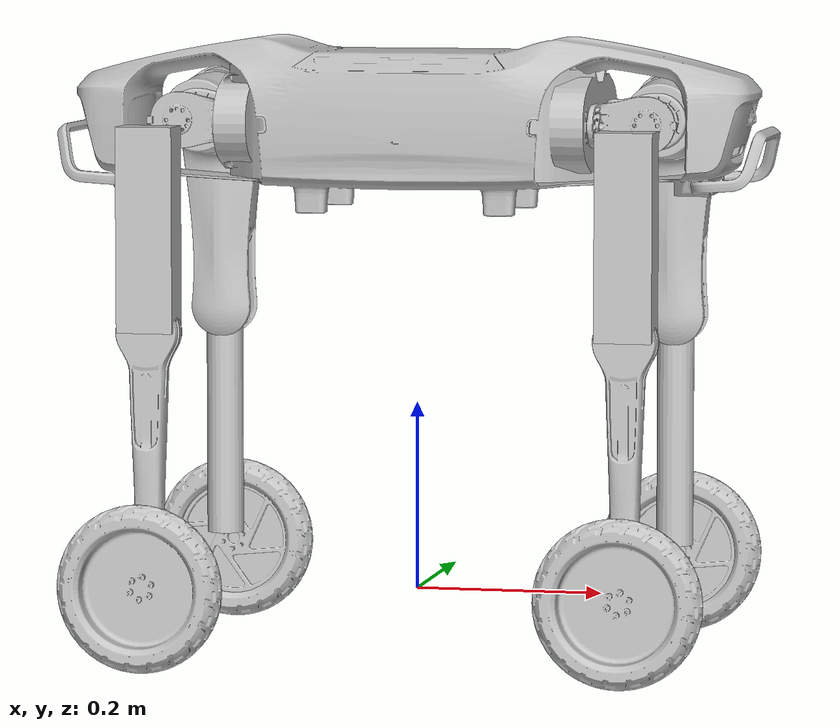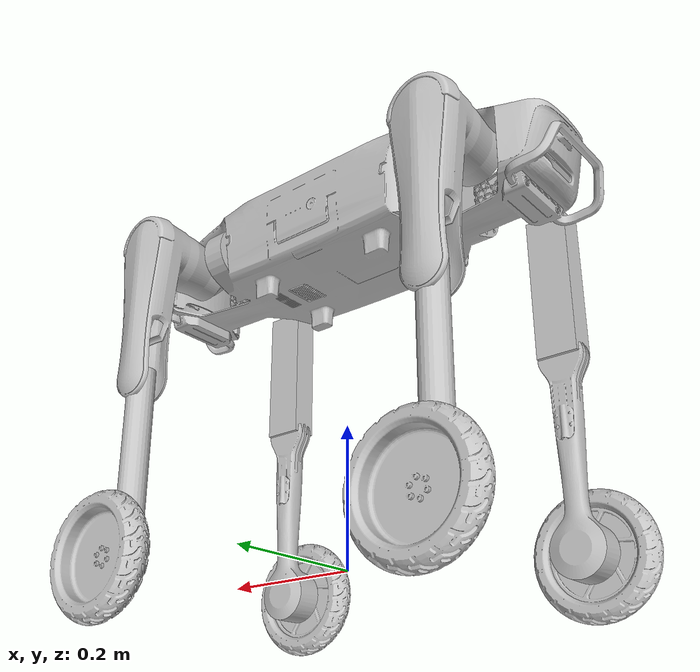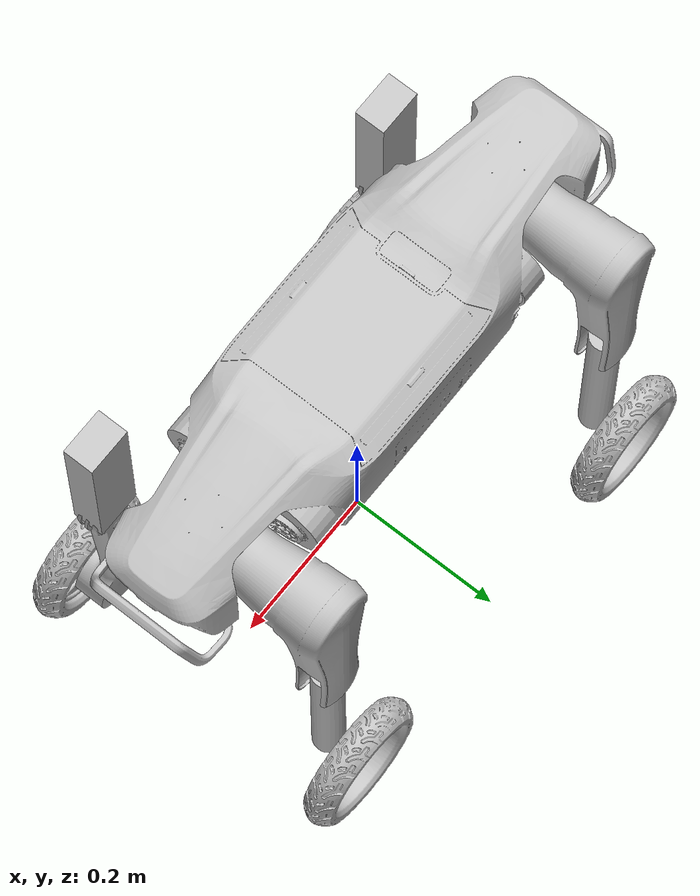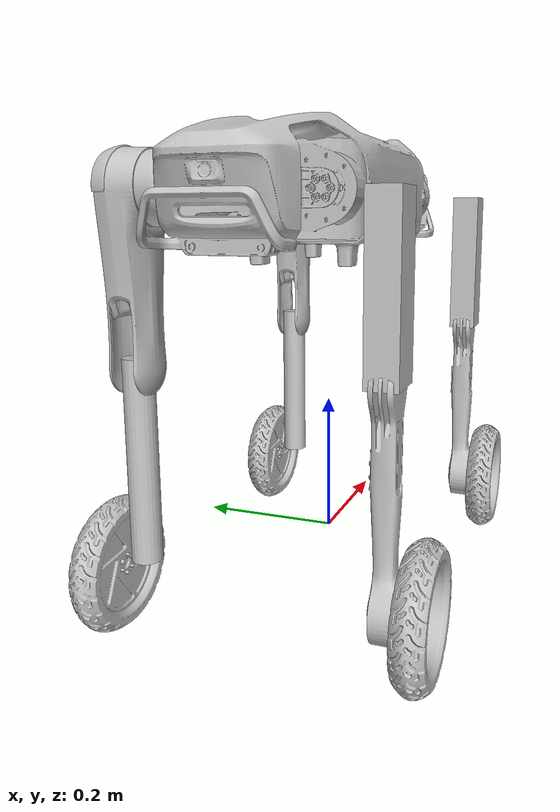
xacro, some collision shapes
<?xml version="1.0" encoding="utf-8"?>
<robot name="dobot_quad_wheel" xmlns:xacro="http://www.ros.org/wiki/xacro">
<mujoco>
        <compiler
        meshdir="../meshes/"
        balanceinertia="true"
        discardvisual="false" />
</mujoco>
<link
  name="world">
</link>
<link name="link_trunk">
  <inertial>
    <origin
      xyz="0.002447 0.00046 0.002851"
      rpy="0 0 0"/>
    <mass
      value="10.249" />
    <inertia
      ixx="45881.970E-06"
      ixy="16.957E-06"
      ixz="177.574E-06"
      iyy="247797.819E-06"
      iyz="41.872E-06"
      izz="268476.829E-06" />
  </inertial>
  <visual>
    <origin
      xyz="0 0 0"
      rpy="0 0 0" />
    <geometry>
      <mesh
        filename="package://dobot_quad_wheel/meshes/trunk.STL" scale="1 1 1"/>
    </geometry>
    <material name="">
      <color rgba="0.752941176470588 0.752941176470588 0.752941176470588 1" />
    </material>
  </visual>
  <collision>
    <origin rpy="0 0 0" xyz="0 0 0" />
    <geometry>
      <box size="0.70 0.18 0.12"/>
    </geometry>
  </collision>
</link>
 <joint
    name="joint_fixed_world"
    type="floating">
    <origin
      xyz="0 0 0.5"
      rpy="0 0 0" />
    <parent
      link="world" />
    <child
      link="link_trunk" />
  </joint>
  <xacro:include filename="$(find dobot_quad_wheel)/xacro/leg_dobot_quad_collision_complete.xacro"/>
  <xacro:leg_dobot_quad name="front_left"  hip_x="0.2525" hip_y="0.062"  x_sign="1" y_sign="1"/>
  <xacro:leg_dobot_quad name="front_right" hip_x="0.2525" hip_y="-0.062" x_sign="1" y_sign="-1"/>
  <xacro:leg_dobot_quad name="rear_left"  hip_x="-0.2525" hip_y="0.062" x_sign="-1" y_sign="1"/>
  <xacro:leg_dobot_quad name="rear_right" hip_x="-0.2525" hip_y="-0.062" x_sign="-1" y_sign="-1"/>
</robot>

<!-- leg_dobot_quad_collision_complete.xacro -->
<robot name="leg_dobot_quad" xmlns:xacro="http://www.ros.org/wiki/xacro">
 <xacro:macro name="leg_dobot_quad" params="name hip_x hip_y x_sign y_sign" >
 <xacro:property name="PI" value="3.1415926535897931"/>

 <xacro:if value="${(x_sign == 1)}">
     <xacro:property name="roty" value="0"/>
 </xacro:if>
 <xacro:if value="${(x_sign == -1)}">
     <xacro:property name="roty" value="${PI}"/>
 </xacro:if>
 <xacro:if value="${(y_sign == 1)}">
     <xacro:property name="rotx" value="0"/>
 </xacro:if>
 <xacro:if value="${(y_sign == -1)}">
     <xacro:property name="rotx" value="${PI}"/>
 </xacro:if>

 <link name="link_${name}_hip">
   <inertial>
     <origin
       xyz="${-0.02418*x_sign} ${-0.01744*y_sign} 0.0"
       rpy="0 0 0"/>
     <mass
       value="0.05576"/>
     <inertia
       ixx="21.088E-06"
       ixy="${11.69E-06*x_sign*y_sign}"
       ixz="${0.0*x_sign}"
       iyy="52.90E-06"
       iyz="${0.0E-06*y_sign}"
       izz="50.03E-06"/>
   </inertial>
   <visual>
     <origin
       xyz="0 0 0"
       rpy="${rotx} ${roty} 0" />
     <geometry>
       <mesh
         filename="package://dobot_quad_wheel/meshes/hip.STL" scale="1 1 1"/>
     </geometry>
     <material name="">
       <color
         rgba="0.752941176470588 0.752941176470588 0.752941176470588 1"/>
     </material>
   </visual>
   <collision>
     <origin rpy="1.5708 0 0" xyz="0 ${0.08*y_sign} 0" />
     <geometry>
       <cylinder length="0.04" radius="0.048" />
     </geometry>
   </collision>
 </link>
<joint name="joint_${name}_abad" type="revolute">
   <origin xyz="${hip_x} ${hip_y} 0" rpy="0 0 0" />
   <parent
     link="link_trunk" />
   <child
     link="link_${name}_hip" />
   <axis
     xyz="1 0 0" />
   <limit
     lower="-0.6632"
     upper="0.6632"
     effort="23"
     velocity="21"/>
 </joint>
 <link
   name="link_${name}_thigh">
   <inertial>
   <origin
     xyz="${0.00144*x_sign} ${-0.04127*y_sign} -0.02940"
     rpy="0 0 0"/>
   <mass
     value="1.71551"/>
   <inertia
     ixx="10737.08420E-06"
     ixy="${-86.37171E-06*x_sign*y_sign}"
     ixz="${216.87284E-06*x_sign}"
     iyy="8548.74788E-06"
     iyz="${2131.25546E-06*y_sign}"
     izz="3618.27220E-06"/>
   </inertial>
   <visual>
     <origin
       xyz="0 0 0"
       rpy="0 0 0" />
     <geometry>
       <xacro:if value="${(y_sign == 1)}">
        <mesh filename="package://dobot_quad_wheel/meshes/thigh_l.STL" scale="1 ${1*y_sign} 1" />
       </xacro:if>
       <xacro:if value="${(y_sign == -1)}">
       <mesh filename="package://dobot_quad_wheel/meshes/thigh_r.STL" scale="1 ${1*y_sign} 1" />
       </xacro:if>
     </geometry>
     <material name="">
       <color
         rgba="0.752941176470588 0.752941176470588 0.752941176470588 1" />
     </material>
   </visual>
   <collision>
     <origin rpy="0 1.5708 0" xyz="0.0 0.0 -0.1075" />
     <geometry>
       <box size="0.215 0.04 0.06"/>
     </geometry>
   </collision>
 </link>
 <joint name="joint_${name}_thigh_pitch" type="revolute">
   <origin xyz="${0.0*x_sign}  ${0.097*y_sign} 0.0" rpy="0 0 0" />
   <parent
     link="link_${name}_hip" />
   <child
     link="link_${name}_thigh" />
   <axis
     xyz="0 1 0" />
     <xacro:if value="${(x_sign == 1)}">
     <limit
       lower="-2.618"
       upper="2.618"
       effort="23"
       velocity="23"/>
     </xacro:if>
     <xacro:if value="${(x_sign == -1)}">
     <limit
       lower="-2.618"
       upper="2.618"
       effort="23"
       velocity="21"/>
     </xacro:if>
 </joint>
 <link name="link_${name}_calf">
   <inertial>
     <origin
       xyz="0.0 ${0.01*y_sign} -0.202"
       rpy="0 0 0" />
     <mass
       value="0.641" />
     <inertia
     ixx="6643.060E-06"
     ixy="0.405E-06"
     ixz="-1.140E-06"
     iyy="6732.526E-06"
     iyz="${421.766E-06*y_sign}"
     izz="318.170E-06" />
   </inertial>
   <visual>
     <origin
       xyz="0 0 0"
       rpy="0 0 0" />
    <geometry>
     <xacro:if value="${(y_sign == 1)}">
      <mesh filename="package://dobot_quad_wheel/meshes/calf_l.STL" scale="1 ${y_sign} 1" />
     </xacro:if>
     <xacro:if value="${(y_sign == -1)}">
      <mesh filename="package://dobot_quad_wheel/meshes/calf_r.STL" scale="1 ${y_sign} 1" />
     </xacro:if>
    </geometry>
     <material name="">
       <color
         rgba="0.752941176470588 0.752941176470588 0.752941176470588 1" />
     </material>
   </visual>
   <collision>
     <origin rpy="0 0 0" xyz="0.0 0.0 -0.12" />
     <geometry>
       <cylinder length="0.265" radius="0.02"/>
     </geometry>
   </collision>
 </link>
 <joint
   name="joint_${name}_calf_pitch"
   type="revolute">
   <origin xyz="0.0 0.0 -0.215" rpy="0 0 0"/>
   <parent
     link="link_${name}_thigh" />
   <child
     link="link_${name}_calf" />
   <axis
     xyz="0 1 0" />
   <limit
     lower="-2.53"
     upper="2.53"
     effort="55"
     velocity="21"/>
 </joint>
 <link
   name="link_${name}_wheel">
   <inertial>
     <origin
       xyz="0 ${0.009*y_sign} 0"
       rpy="0 0 0" />
     <mass
       value="0.546" />
     <inertia
       ixx="1361.419E-06"
       ixy="0"
       ixz="0"
       iyy="2586.621E-06"
       iyz="0"
       izz="1361.554E-06" />
   </inertial>
   <visual>
     <origin
       xyz="0 0 0"
       rpy="0 0 0" />
    <geometry>
     <xacro:if value="${(y_sign == 1)}">
      <mesh filename="package://dobot_quad_wheel/meshes/wheel_l.STL" scale="1 ${y_sign} 1" />
     </xacro:if>
     <xacro:if value="${(y_sign == -1)}">
      <mesh filename="package://dobot_quad_wheel/meshes/wheel_r.STL" scale="1 ${y_sign} 1" />
     </xacro:if>
    </geometry>
     <material name="">
       <color
         rgba="0.752941176470588 0.752941176470588 0.752941176470588 1" />
     </material>
   </visual>
   <collision>
     <origin rpy="1.5707963267948966 0 0" xyz="0 ${y_sign*0.014} 0" />
     <geometry>
       <cylinder length="0.037" radius="0.0875"/>
     </geometry>
   </collision>
 </link>
 <joint
   name="joint_${name}_wheel"
   type="continuous">
   <origin
     xyz="0 ${0.0335*y_sign} -0.265"
     rpy="0 0 0" />
   <parent
     link="link_${name}_calf" />
   <child
     link="link_${name}_wheel" />
   <axis
     xyz="0 1 0" />
   <limit
     effort="20"
     velocity="30"/>
 </joint>
 </xacro:macro>
</robot>
